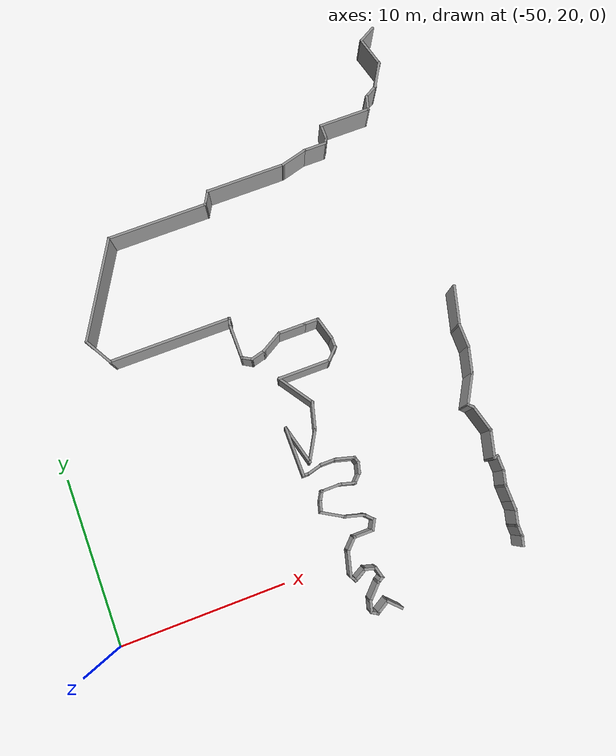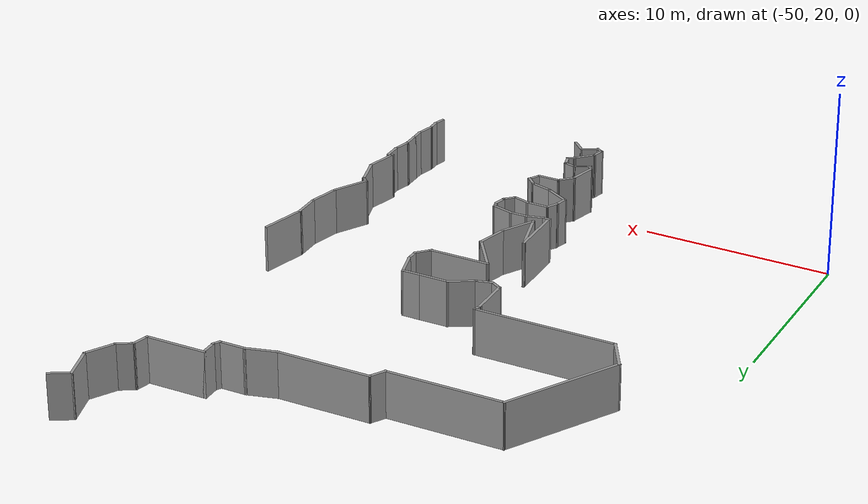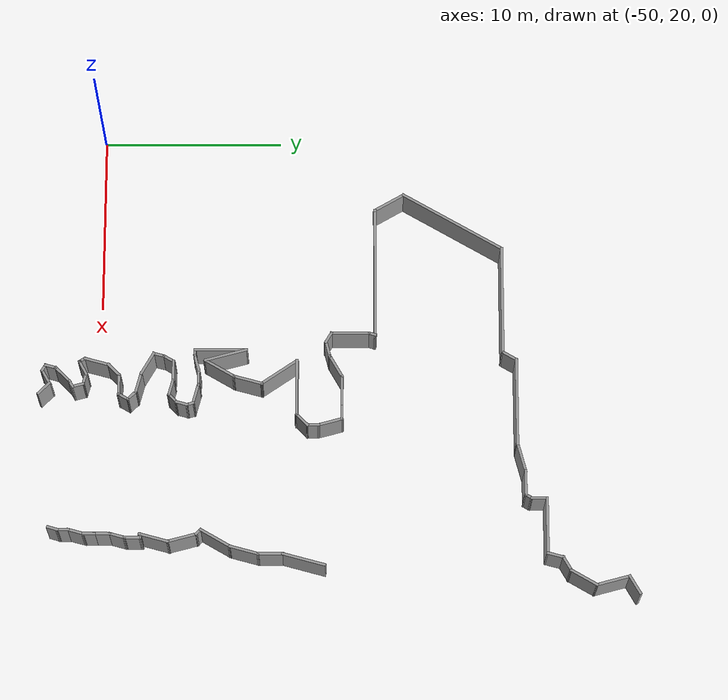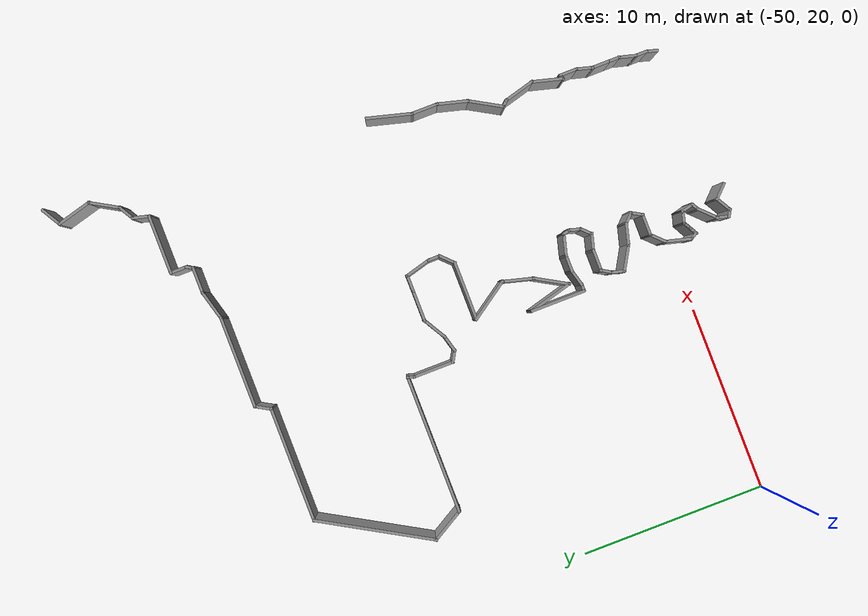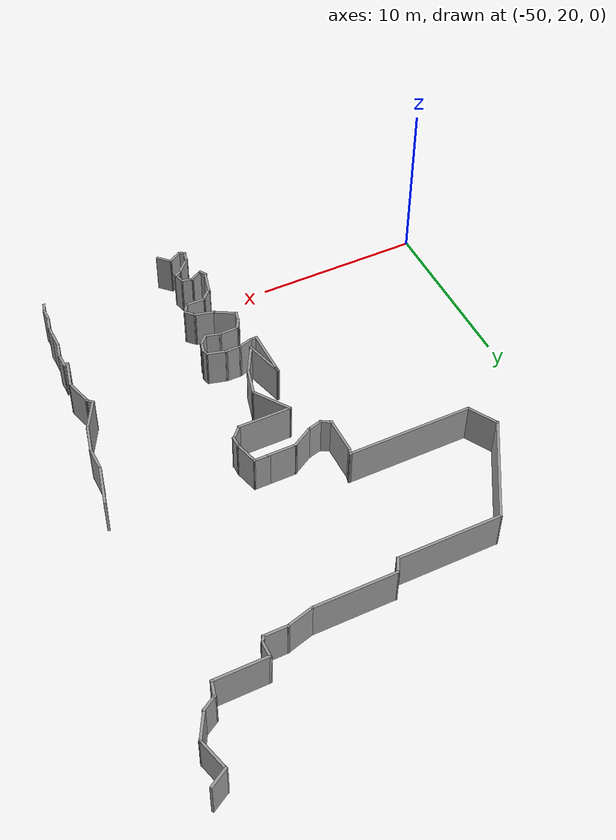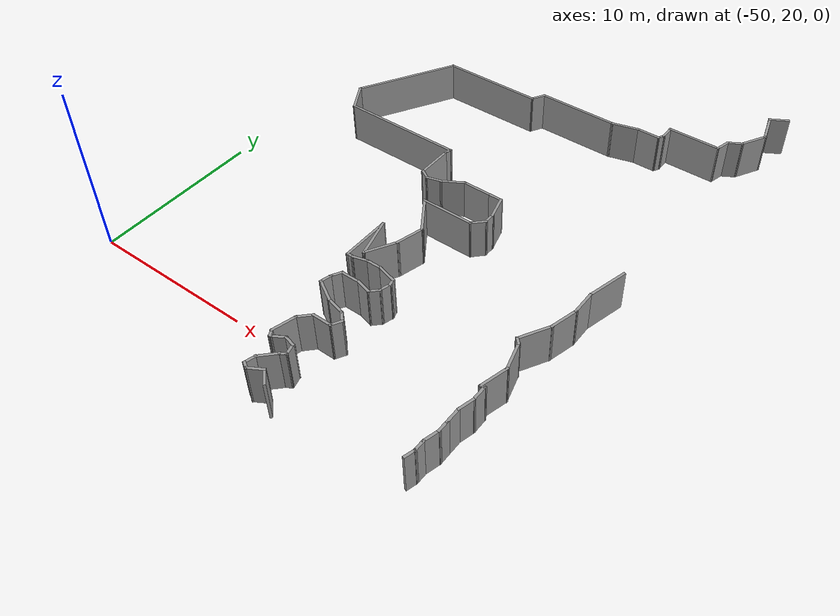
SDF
<sdf version="1.7">
 <model name="office_track1">
  <pose>2.3626 4.43866 0 0 -0 0</pose>
  <link name="Wall_14">
   <collision name="Wall_14_Collision">
    <geometry><box><size>1 0.15 2.5</size></box></geometry>
    <pose>0 0 1.25 0 -0 0</pose>
   </collision>
   <visual name="Wall_14_Visual">
    <pose>0 0 1.25 0 -0 0</pose>
    <geometry><box><size>1 0.15 2.5</size></box></geometry>
    <material>
     <script><uri>file://media/materials/scripts/gazebo.material</uri><name>Gazebo/Grey</name></script>
     <ambient>1 1 1 1</ambient>
    </material>
    <meta><layer>0</layer></meta>
   </visual>
   <pose>-28.5202 17.672 0 0 -0 -1.5708</pose>
  </link>
  <link name="Wall_15">
   <collision name="Wall_15_Collision">
    <geometry><box><size>1 0.15 2.5</size></box></geometry>
    <pose>0 0 1.25 0 -0 0</pose>
   </collision>
   <visual name="Wall_15_Visual">
    <pose>0 0 1.25 0 -0 0</pose>
    <geometry><box><size>1 0.15 2.5</size></box></geometry>
    <material>
     <script><uri>file://media/materials/scripts/gazebo.material</uri><name>Gazebo/Grey</name></script>
     <ambient>1 1 1 1</ambient>
    </material>
    <meta><layer>0</layer></meta>
   </visual>
   <pose>-28.6302 16.8365 0 0 -0 -1.8326</pose>
  </link>
  <link name="Wall_16">
   <collision name="Wall_16_Collision">
    <geometry><box><size>1 0.15 2.5</size></box></geometry>
    <pose>0 0 1.25 0 -0 0</pose>
   </collision>
   <visual name="Wall_16_Visual">
    <pose>0 0 1.25 0 -0 0</pose>
    <geometry><box><size>1 0.15 2.5</size></box></geometry>
    <material>
     <script><uri>file://media/materials/scripts/gazebo.material</uri><name>Gazebo/Grey</name></script>
     <ambient>1 1 1 1</ambient>
    </material>
    <meta><layer>0</layer></meta>
   </visual>
   <pose>-28.7402 16.0009 0 0 -0 -1.5708</pose>
  </link>
  <link name="Wall_17">
   <collision name="Wall_17_Collision">
    <geometry><box><size>0.75 0.15 2.5</size></box></geometry>
    <pose>0 0 1.25 0 -0 0</pose>
   </collision>
   <visual name="Wall_17_Visual">
    <pose>0 0 1.25 0 -0 0</pose>
    <geometry><box><size>0.75 0.15 2.5</size></box></geometry>
    <material>
     <script><uri>file://media/materials/scripts/gazebo.material</uri><name>Gazebo/Grey</name></script>
     <ambient>1 1 1 1</ambient>
    </material>
    <meta><layer>0</layer></meta>
   </visual>
   <pose>-28.7402 15.2759 0 0 -0 -1.5708</pose>
  </link>
  <link name="Wall_18">
   <collision name="Wall_18_Collision">
    <geometry><box><size>1 0.15 2.5</size></box></geometry>
    <pose>0 0 1.25 0 -0 0</pose>
   </collision>
   <visual name="Wall_18_Visual">
    <pose>0 0 1.25 0 -0 0</pose>
    <geometry><box><size>1 0.15 2.5</size></box></geometry>
    <material>
     <script><uri>file://media/materials/scripts/gazebo.material</uri><name>Gazebo/Grey</name></script>
     <ambient>1 1 1 1</ambient>
    </material>
    <meta><layer>0</layer></meta>
   </visual>
   <pose>-28.8502 14.5654 0 0 -0 -1.8326</pose>
  </link>
  <link name="Wall_19">
   <collision name="Wall_19_Collision">
    <geometry><box><size>0.75 0.15 2.5</size></box></geometry>
    <pose>0 0 1.25 0 -0 0</pose>
   </collision>
   <visual name="Wall_19_Visual">
    <pose>0 0 1.25 0 -0 0</pose>
    <geometry><box><size>0.75 0.15 2.5</size></box></geometry>
    <material>
     <script><uri>file://media/materials/scripts/gazebo.material</uri><name>Gazebo/Grey</name></script>
     <ambient>1 1 1 1</ambient>
    </material>
    <meta><layer>0</layer></meta>
   </visual>
   <pose>-28.9602 13.8549 0 0 -0 -1.5708</pose>
  </link>
  <link name="Wall_20">
   <collision name="Wall_20_Collision">
    <geometry><box><size>0.685393 0.15 2.5</size></box></geometry>
    <pose>0 0 1.25 0 -0 0</pose>
   </collision>
   <visual name="Wall_20_Visual">
    <pose>0 0 1.25 0 -0 0</pose>
    <geometry><box><size>0.685393 0.15 2.5</size></box></geometry>
    <material>
     <script><uri>file://media/materials/scripts/gazebo.material</uri><name>Gazebo/Grey</name></script>
     <ambient>1 1 1 1</ambient>
    </material>
    <meta><layer>0</layer></meta>
   </visual>
   <pose>-29.0341 13.2976 0 0 -0 -1.85027</pose>
  </link>
  <link name="Wall_292">
   <collision name="Wall_292_Collision">
    <geometry><box><size>2.5 0.15 2.5</size></box></geometry>
    <pose>0 0 1.25 0 -0 0</pose>
   </collision>
   <visual name="Wall_292_Visual">
    <pose>0 0 1.25 0 -0 0</pose>
    <geometry><box><size>2.5 0.15 2.5</size></box></geometry>
    <material>
     <script><uri>file://media/materials/scripts/gazebo.material</uri><name>Gazebo/Grey</name></script>
     <ambient>1 1 1 1</ambient>
    </material>
    <meta><layer>0</layer></meta>
   </visual>
   <pose>-27.3262 27.0249 0 0 -0 -1.8326</pose>
  </link>
  <link name="Wall_293">
   <collision name="Wall_293_Collision">
    <geometry><box><size>1.5 0.15 2.5</size></box></geometry>
    <pose>0 0 1.25 0 -0 0</pose>
   </collision>
   <visual name="Wall_293_Visual">
    <pose>0 0 1.25 0 -0 0</pose>
    <geometry><box><size>1.5 0.15 2.5</size></box></geometry>
    <material>
     <script><uri>file://media/materials/scripts/gazebo.material</uri><name>Gazebo/Grey</name></script>
     <ambient>1 1 1 1</ambient>
    </material>
    <meta><layer>0</layer></meta>
   </visual>
   <pose>-27.6303 25.2149 0 0 -0 -1.5708</pose>
  </link>
  <link name="Wall_294">
   <collision name="Wall_294_Collision">
    <geometry><box><size>1.75 0.15 2.5</size></box></geometry>
    <pose>0 0 1.25 0 -0 0</pose>
   </collision>
   <visual name="Wall_294_Visual">
    <pose>0 0 1.25 0 -0 0</pose>
    <geometry><box><size>1.75 0.15 2.5</size></box></geometry>
    <material>
     <script><uri>file://media/materials/scripts/gazebo.material</uri><name>Gazebo/Grey</name></script>
     <ambient>1 1 1 1</ambient>
    </material>
    <meta><layer>0</layer></meta>
   </visual>
   <pose>-27.8374 23.7672 0 0 -0 -1.8326</pose>
  </link>
  <link name="Wall_295">
   <collision name="Wall_295_Collision">
    <geometry><box><size>2 0.15 2.5</size></box></geometry>
    <pose>0 0 1.25 0 -0 0</pose>
   </collision>
   <visual name="Wall_295_Visual">
    <pose>0 0 1.25 0 -0 0</pose>
    <geometry><box><size>2 0.15 2.5</size></box></geometry>
    <material>
     <script><uri>file://media/materials/scripts/gazebo.material</uri><name>Gazebo/Grey</name></script>
     <ambient>1 1 1 1</ambient>
    </material>
    <meta><layer>0</layer></meta>
   </visual>
   <pose>-28.5069 22.1934 0 0 -0 -2.0944</pose>
  </link>
  <link name="Wall_296">
   <collision name="Wall_296_Collision">
    <geometry><box><size>0.5 0.15 2.5</size></box></geometry>
    <pose>0 0 1.25 0 -0 0</pose>
   </collision>
   <visual name="Wall_296_Visual">
    <pose>0 0 1.25 0 -0 0</pose>
    <geometry><box><size>0.5 0.15 2.5</size></box></geometry>
    <material>
     <script><uri>file://media/materials/scripts/gazebo.material</uri><name>Gazebo/Grey</name></script>
     <ambient>1 1 1 1</ambient>
    </material>
    <meta><layer>0</layer></meta>
   </visual>
   <pose>-28.8457 21.2685 0 0 -0 -0.785398</pose>
  </link>
  <link name="Wall_297">
   <collision name="Wall_297_Collision">
    <geometry><box><size>1.75 0.15 2.5</size></box></geometry>
    <pose>0 0 1.25 0 -0 0</pose>
   </collision>
   <visual name="Wall_297_Visual">
    <pose>0 0 1.25 0 -0 0</pose>
    <geometry><box><size>1.75 0.15 2.5</size></box></geometry>
    <material>
     <script><uri>file://media/materials/scripts/gazebo.material</uri><name>Gazebo/Grey</name></script>
     <ambient>1 1 1 1</ambient>
    </material>
    <meta><layer>0</layer></meta>
   </visual>
   <pose>-28.5149 20.3721 0 0 -0 -1.309</pose>
  </link>
  <link name="Wall_298">
   <collision name="Wall_298_Collision">
    <geometry><box><size>1.75 0.15 2.5</size></box></geometry>
    <pose>0 0 1.25 0 -0 0</pose>
   </collision>
   <visual name="Wall_298_Visual">
    <pose>0 0 1.25 0 -0 0</pose>
    <geometry><box><size>1.75 0.15 2.5</size></box></geometry>
    <material>
     <script><uri>file://media/materials/scripts/gazebo.material</uri><name>Gazebo/Grey</name></script>
     <ambient>1 1 1 1</ambient>
    </material>
    <meta><layer>0</layer></meta>
   </visual>
   <pose>-28.5149 18.8266 0 0 -0 -1.8326</pose>
  </link>
  <link name="Wall_299">
   <collision name="Wall_299_Collision">
    <geometry><box><size>0.356248 0.15 2.5</size></box></geometry>
    <pose>0 0 1.25 0 -0 0</pose>
   </collision>
   <visual name="Wall_299_Visual">
    <pose>0 0 1.25 0 -0 0</pose>
    <geometry><box><size>0.356248 0.15 2.5</size></box></geometry>
    <material>
     <script><uri>file://media/materials/scripts/gazebo.material</uri><name>Gazebo/Grey</name></script>
     <ambient>1 1 1 1</ambient>
    </material>
    <meta><layer>0</layer></meta>
   </visual>
   <pose>-28.6211 18.0754 0 0 -0 0.210782</pose>
  </link>
  <link name="Wall_539">
   <collision name="Wall_539_Collision">
    <geometry><box><size>1 0.15 2.5</size></box></geometry>
    <pose>0 0 1.25 0 -0 0</pose>
   </collision>
   <visual name="Wall_539_Visual">
    <pose>0 0 1.25 0 -0 0</pose>
    <geometry><box><size>1 0.15 2.5</size></box></geometry>
    <material>
     <script><uri>file://media/materials/scripts/gazebo.material</uri><name>Gazebo/Grey</name></script>
     <ambient>1 1 1 1</ambient>
    </material>
    <meta><layer>0</layer></meta>
   </visual>
   <pose>-37.0046 12.5911 0 0 -0 2.35619</pose>
  </link>
  <link name="Wall_540">
   <collision name="Wall_540_Collision">
    <geometry><box><size>1 0.15 2.5</size></box></geometry>
    <pose>0 0 1.25 0 -0 0</pose>
   </collision>
   <visual name="Wall_540_Visual">
    <pose>0 0 1.25 0 -0 0</pose>
    <geometry><box><size>1 0.15 2.5</size></box></geometry>
    <material>
     <script><uri>file://media/materials/scripts/gazebo.material</uri><name>Gazebo/Grey</name></script>
     <ambient>1 1 1 1</ambient>
    </material>
    <meta><layer>0</layer></meta>
   </visual>
   <pose>-37.6732 12.6791 0 0 -0 -2.61799</pose>
  </link>
  <link name="Wall_541">
   <collision name="Wall_541_Collision">
    <geometry><box><size>0.5 0.15 2.5</size></box></geometry>
    <pose>0 0 1.25 0 -0 0</pose>
   </collision>
   <visual name="Wall_541_Visual">
    <pose>0 0 1.25 0 -0 0</pose>
    <geometry><box><size>0.5 0.15 2.5</size></box></geometry>
    <material>
     <script><uri>file://media/materials/scripts/gazebo.material</uri><name>Gazebo/Grey</name></script>
     <ambient>1 1 1 1</ambient>
    </material>
    <meta><layer>0</layer></meta>
   </visual>
   <pose>-38.1928 12.5541 0 0 -0 2.61799</pose>
  </link>
  <link name="Wall_542">
   <collision name="Wall_542_Collision">
    <geometry><box><size>0.75 0.15 2.5</size></box></geometry>
    <pose>0 0 1.25 0 -0 0</pose>
   </collision>
   <visual name="Wall_542_Visual">
    <pose>0 0 1.25 0 -0 0</pose>
    <geometry><box><size>0.75 0.15 2.5</size></box></geometry>
    <material>
     <script><uri>file://media/materials/scripts/gazebo.material</uri><name>Gazebo/Grey</name></script>
     <ambient>1 1 1 1</ambient>
    </material>
    <meta><layer>0</layer></meta>
   </visual>
   <pose>-38.2668 12.9314 0 0 -0 1.309</pose>
  </link>
  <link name="Wall_543">
   <collision name="Wall_543_Collision">
    <geometry><box><size>1.25 0.15 2.5</size></box></geometry>
    <pose>0 0 1.25 0 -0 0</pose>
   </collision>
   <visual name="Wall_543_Visual">
    <pose>0 0 1.25 0 -0 0</pose>
    <geometry><box><size>1.25 0.15 2.5</size></box></geometry>
    <material>
     <script><uri>file://media/materials/scripts/gazebo.material</uri><name>Gazebo/Grey</name></script>
     <ambient>1 1 1 1</ambient>
    </material>
    <meta><layer>0</layer></meta>
   </visual>
   <pose>-37.8002 13.6101 0 0 -0 0.785398</pose>
  </link>
  <link name="Wall_544">
   <collision name="Wall_544_Collision">
    <geometry><box><size>0.5 0.15 2.5</size></box></geometry>
    <pose>0 0 1.25 0 -0 0</pose>
   </collision>
   <visual name="Wall_544_Visual">
    <pose>0 0 1.25 0 -0 0</pose>
    <geometry><box><size>0.5 0.15 2.5</size></box></geometry>
    <material>
     <script><uri>file://media/materials/scripts/gazebo.material</uri><name>Gazebo/Grey</name></script>
     <ambient>1 1 1 1</ambient>
    </material>
    <meta><layer>0</layer></meta>
   </visual>
   <pose>-37.2597 14.0865 0 0 -0 0.523599</pose>
  </link>
  <link name="Wall_545">
   <collision name="Wall_545_Collision">
    <geometry><box><size>0.75 0.15 2.5</size></box></geometry>
    <pose>0 0 1.25 0 -0 0</pose>
   </collision>
   <visual name="Wall_545_Visual">
    <pose>0 0 1.25 0 -0 0</pose>
    <geometry><box><size>0.75 0.15 2.5</size></box></geometry>
    <material>
     <script><uri>file://media/materials/scripts/gazebo.material</uri><name>Gazebo/Grey</name></script>
     <ambient>1 1 1 1</ambient>
    </material>
    <meta><layer>0</layer></meta>
   </visual>
   <pose>-37.1858 14.4638 0 0 -0 1.8326</pose>
  </link>
  <link name="Wall_546">
   <collision name="Wall_546_Collision">
    <geometry><box><size>0.75 0.15 2.5</size></box></geometry>
    <pose>0 0 1.25 0 -0 0</pose>
   </collision>
   <visual name="Wall_546_Visual">
    <pose>0 0 1.25 0 -0 0</pose>
    <geometry><box><size>0.75 0.15 2.5</size></box></geometry>
    <material>
     <script><uri>file://media/materials/scripts/gazebo.material</uri><name>Gazebo/Grey</name></script>
     <ambient>1 1 1 1</ambient>
    </material>
    <meta><layer>0</layer></meta>
   </visual>
   <pose>-37.5533 14.8312 0 0 -0 2.87979</pose>
  </link>
  <link name="Wall_547">
   <collision name="Wall_547_Collision">
    <geometry><box><size>0.75 0.15 2.5</size></box></geometry>
    <pose>0 0 1.25 0 -0 0</pose>
   </collision>
   <visual name="Wall_547_Visual">
    <pose>0 0 1.25 0 -0 0</pose>
    <geometry><box><size>0.75 0.15 2.5</size></box></geometry>
    <material>
     <script><uri>file://media/materials/scripts/gazebo.material</uri><name>Gazebo/Grey</name></script>
     <ambient>1 1 1 1</ambient>
    </material>
    <meta><layer>0</layer></meta>
   </visual>
   <pose>-38.1028 14.7589 0 0 -0 -2.61799</pose>
  </link>
  <link name="Wall_549">
   <collision name="Wall_549_Collision">
    <geometry><box><size>1.25 0.15 2.5</size></box></geometry>
    <pose>0 0 1.25 0 -0 0</pose>
   </collision>
   <visual name="Wall_549_Visual">
    <pose>0 0 1.25 0 -0 0</pose>
    <geometry><box><size>1.25 0.15 2.5</size></box></geometry>
    <material>
     <script><uri>file://media/materials/scripts/gazebo.material</uri><name>Gazebo/Grey</name></script>
     <ambient>1 1 1 1</ambient>
    </material>
    <meta><layer>0</layer></meta>
   </visual>
   <pose>-37.3368 17.8209 0 0 -0 -0.261799</pose>
  </link>
  <link name="Wall_550">
   <collision name="Wall_550_Collision">
    <geometry><box><size>0.75 0.15 2.5</size></box></geometry>
    <pose>0 0 1.25 0 -0 0</pose>
   </collision>
   <visual name="Wall_550_Visual">
    <pose>0 0 1.25 0 -0 0</pose>
    <geometry><box><size>0.75 0.15 2.5</size></box></geometry>
    <material>
     <script><uri>file://media/materials/scripts/gazebo.material</uri><name>Gazebo/Grey</name></script>
     <ambient>1 1 1 1</ambient>
    </material>
    <meta><layer>0</layer></meta>
   </visual>
   <pose>-36.5934 17.4664 0 0 -0 -0.785398</pose>
  </link>
  <link name="Wall_551">
   <collision name="Wall_551_Collision">
    <geometry><box><size>0.75 0.15 2.5</size></box></geometry>
    <pose>0 0 1.25 0 -0 0</pose>
   </collision>
   <visual name="Wall_551_Visual">
    <pose>0 0 1.25 0 -0 0</pose>
    <geometry><box><size>0.75 0.15 2.5</size></box></geometry>
    <material>
     <script><uri>file://media/materials/scripts/gazebo.material</uri><name>Gazebo/Grey</name></script>
     <ambient>1 1 1 1</ambient>
    </material>
    <meta><layer>0</layer></meta>
   </visual>
   <pose>-36.5312 16.9945 0 0 -0 -2.0944</pose>
  </link>
  <link name="Wall_552">
   <collision name="Wall_552_Collision">
    <geometry><box><size>1.25 0.15 2.5</size></box></geometry>
    <pose>0 0 1.25 0 -0 0</pose>
   </collision>
   <visual name="Wall_552_Visual">
    <pose>0 0 1.25 0 -0 0</pose>
    <geometry><box><size>1.25 0.15 2.5</size></box></geometry>
    <material>
     <script><uri>file://media/materials/scripts/gazebo.material</uri><name>Gazebo/Grey</name></script>
     <ambient>1 1 1 1</ambient>
    </material>
    <meta><layer>0</layer></meta>
   </visual>
   <pose>-37.2312 16.7347 0 0 -0 3.14159</pose>
  </link>
  <link name="Wall_553">
   <collision name="Wall_553_Collision">
    <geometry><box><size>1 0.15 2.5</size></box></geometry>
    <pose>0 0 1.25 0 -0 0</pose>
   </collision>
   <visual name="Wall_553_Visual">
    <pose>0 0 1.25 0 -0 0</pose>
    <geometry><box><size>1 0.15 2.5</size></box></geometry>
    <material>
     <script><uri>file://media/materials/scripts/gazebo.material</uri><name>Gazebo/Grey</name></script>
     <ambient>1 1 1 1</ambient>
    </material>
    <meta><layer>0</layer></meta>
   </visual>
   <pose>-38.0818 16.4341 0 0 -0 -2.35619</pose>
  </link>
  <link name="Wall_554">
   <collision name="Wall_554_Collision">
    <geometry><box><size>1.5 0.15 2.5</size></box></geometry>
    <pose>0 0 1.25 0 -0 0</pose>
   </collision>
   <visual name="Wall_554_Visual">
    <pose>0 0 1.25 0 -0 0</pose>
    <geometry><box><size>1.5 0.15 2.5</size></box></geometry>
    <material>
     <script><uri>file://media/materials/scripts/gazebo.material</uri><name>Gazebo/Grey</name></script>
     <ambient>1 1 1 1</ambient>
    </material>
    <meta><layer>0</layer></meta>
   </visual>
   <pose>-38.557 15.4816 0 0 -0 -1.8326</pose>
  </link>
  <link name="Wall_555">
   <collision name="Wall_555_Collision">
    <geometry><box><size>0.5 0.15 2.5</size></box></geometry>
    <pose>0 0 1.25 0 -0 0</pose>
   </collision>
   <visual name="Wall_555_Visual">
    <pose>0 0 1.25 0 -0 0</pose>
    <geometry><box><size>0.5 0.15 2.5</size></box></geometry>
    <material>
     <script><uri>file://media/materials/scripts/gazebo.material</uri><name>Gazebo/Grey</name></script>
     <ambient>1 1 1 1</ambient>
    </material>
    <meta><layer>0</layer></meta>
   </visual>
   <pose>-38.6442 14.6781 0 0 -0 -1.0472</pose>
  </link>
  <link name="Wall_556">
   <collision name="Wall_556_Collision">
    <geometry><box><size>0.15 0.15 2.5</size></box></geometry>
    <pose>0 0 1.25 0 -0 0</pose>
   </collision>
   <visual name="Wall_556_Visual">
    <pose>0 0 1.25 0 -0 0</pose>
    <geometry><box><size>0.15 0.15 2.5</size></box></geometry>
    <material>
     <script><uri>file://media/materials/scripts/gazebo.material</uri><name>Gazebo/Grey</name></script>
     <ambient>1 1 1 1</ambient>
    </material>
    <meta><layer>0</layer></meta>
   </visual>
   <pose>-38.5567 14.5265 0 0 -0 0</pose>
  </link>
  <link name="Wall_557">
   <collision name="Wall_557_Collision">
    <geometry><box><size>0.959625 0.15 2.5</size></box></geometry>
    <pose>0 0 1.25 0 -0 0</pose>
   </collision>
   <visual name="Wall_557_Visual">
    <pose>0 0 1.25 0 -0 0</pose>
    <geometry><box><size>0.959625 0.15 2.5</size></box></geometry>
    <material>
     <script><uri>file://media/materials/scripts/gazebo.material</uri><name>Gazebo/Grey</name></script>
     <ambient>1 1 1 1</ambient>
    </material>
    <meta><layer>0</layer></meta>
   </visual>
   <pose>-38.1999 14.7177 0 0 -0 0.491857</pose>
  </link>
  <link name="Wall_559">
   <collision name="Wall_559_Collision">
    <geometry><box><size>1.5 0.15 2.5</size></box></geometry>
    <pose>0 0 1.25 0 -0 0</pose>
   </collision>
   <visual name="Wall_559_Visual">
    <pose>0 0 1.25 0 -0 0</pose>
    <geometry><box><size>1.5 0.15 2.5</size></box></geometry>
    <material>
     <script><uri>file://media/materials/scripts/gazebo.material</uri><name>Gazebo/Grey</name></script>
     <ambient>1 1 1 1</ambient>
    </material>
    <meta><layer>0</layer></meta>
   </visual>
   <pose>-38.4526 18.3007 0 0 -0 2.61799</pose>
  </link>
  <link name="Wall_560">
   <collision name="Wall_560_Collision">
    <geometry><box><size>0.75 0.15 2.5</size></box></geometry>
    <pose>0 0 1.25 0 -0 0</pose>
   </collision>
   <visual name="Wall_560_Visual">
    <pose>0 0 1.25 0 -0 0</pose>
    <geometry><box><size>0.75 0.15 2.5</size></box></geometry>
    <material>
     <script><uri>file://media/materials/scripts/gazebo.material</uri><name>Gazebo/Grey</name></script>
     <ambient>1 1 1 1</ambient>
    </material>
    <meta><layer>0</layer></meta>
   </visual>
   <pose>-38.9595 18.928 0 0 -0 1.309</pose>
  </link>
  <link name="Wall_561">
   <collision name="Wall_561_Collision">
    <geometry><box><size>0.75 0.15 2.5</size></box></geometry>
    <pose>0 0 1.25 0 -0 0</pose>
   </collision>
   <visual name="Wall_561_Visual">
    <pose>0 0 1.25 0 -0 0</pose>
    <geometry><box><size>0.75 0.15 2.5</size></box></geometry>
    <material>
     <script><uri>file://media/materials/scripts/gazebo.material</uri><name>Gazebo/Grey</name></script>
     <ambient>1 1 1 1</ambient>
    </material>
    <meta><layer>0</layer></meta>
   </visual>
   <pose>-38.7319 19.4776 0 0 -0 1.0472</pose>
  </link>
  <link name="Wall_562">
   <collision name="Wall_562_Collision">
    <geometry><box><size>1.25 0.15 2.5</size></box></geometry>
    <pose>0 0 1.25 0 -0 0</pose>
   </collision>
   <visual name="Wall_562_Visual">
    <pose>0 0 1.25 0 -0 0</pose>
    <geometry><box><size>1.25 0.15 2.5</size></box></geometry>
    <material>
     <script><uri>file://media/materials/scripts/gazebo.material</uri><name>Gazebo/Grey</name></script>
     <ambient>1 1 1 1</ambient>
    </material>
    <meta><layer>0</layer></meta>
   </visual>
   <pose>-38.0319 19.7374 0 0 -0 0</pose>
  </link>
  <link name="Wall_563">
   <collision name="Wall_563_Collision">
    <geometry><box><size>1 0.15 2.5</size></box></geometry>
    <pose>0 0 1.25 0 -0 0</pose>
   </collision>
   <visual name="Wall_563_Visual">
    <pose>0 0 1.25 0 -0 0</pose>
    <geometry><box><size>1 0.15 2.5</size></box></geometry>
    <material>
     <script><uri>file://media/materials/scripts/gazebo.material</uri><name>Gazebo/Grey</name></script>
     <ambient>1 1 1 1</ambient>
    </material>
    <meta><layer>0</layer></meta>
   </visual>
   <pose>-37.0713 19.6274 0 0 -0 -0.261799</pose>
  </link>
  <link name="Wall_564">
   <collision name="Wall_564_Collision">
    <geometry><box><size>0.75 0.15 2.5</size></box></geometry>
    <pose>0 0 1.25 0 -0 0</pose>
   </collision>
   <visual name="Wall_564_Visual">
    <pose>0 0 1.25 0 -0 0</pose>
    <geometry><box><size>0.75 0.15 2.5</size></box></geometry>
    <material>
     <script><uri>file://media/materials/scripts/gazebo.material</uri><name>Gazebo/Grey</name></script>
     <ambient>1 1 1 1</ambient>
    </material>
    <meta><layer>0</layer></meta>
   </visual>
   <pose>-36.4487 19.7295 0 0 -0 0.785398</pose>
  </link>
  <link name="Wall_565">
   <collision name="Wall_565_Collision">
    <geometry><box><size>0.75 0.15 2.5</size></box></geometry>
    <pose>0 0 1.25 0 -0 0</pose>
   </collision>
   <visual name="Wall_565_Visual">
    <pose>0 0 1.25 0 -0 0</pose>
    <geometry><box><size>0.75 0.15 2.5</size></box></geometry>
    <material>
     <script><uri>file://media/materials/scripts/gazebo.material</uri><name>Gazebo/Grey</name></script>
     <ambient>1 1 1 1</ambient>
    </material>
    <meta><layer>0</layer></meta>
   </visual>
   <pose>-36.1589 20.2315 0 0 -0 1.309</pose>
  </link>
  <link name="Wall_566">
   <collision name="Wall_566_Collision">
    <geometry><box><size>0.5 0.15 2.5</size></box></geometry>
    <pose>0 0 1.25 0 -0 0</pose>
   </collision>
   <visual name="Wall_566_Visual">
    <pose>0 0 1.25 0 -0 0</pose>
    <geometry><box><size>0.5 0.15 2.5</size></box></geometry>
    <material>
     <script><uri>file://media/materials/scripts/gazebo.material</uri><name>Gazebo/Grey</name></script>
     <ambient>1 1 1 1</ambient>
    </material>
    <meta><layer>0</layer></meta>
   </visual>
   <pose>-36.1266 20.6903 0 0 -0 1.8326</pose>
  </link>
  <link name="Wall_567">
   <collision name="Wall_567_Collision">
    <geometry><box><size>1.25 0.15 2.5</size></box></geometry>
    <pose>0 0 1.25 0 -0 0</pose>
   </collision>
   <visual name="Wall_567_Visual">
    <pose>0 0 1.25 0 -0 0</pose>
    <geometry><box><size>1.25 0.15 2.5</size></box></geometry>
    <material>
     <script><uri>file://media/materials/scripts/gazebo.material</uri><name>Gazebo/Grey</name></script>
     <ambient>1 1 1 1</ambient>
    </material>
    <meta><layer>0</layer></meta>
   </visual>
   <pose>-36.7031 21.0017 0 0 -0 2.87979</pose>
  </link>
  <link name="Wall_568">
   <collision name="Wall_568_Collision">
    <geometry><box><size>1 0.15 2.5</size></box></geometry>
    <pose>0 0 1.25 0 -0 0</pose>
   </collision>
   <visual name="Wall_568_Visual">
    <pose>0 0 1.25 0 -0 0</pose>
    <geometry><box><size>1 0.15 2.5</size></box></geometry>
    <material>
     <script><uri>file://media/materials/scripts/gazebo.material</uri><name>Gazebo/Grey</name></script>
     <ambient>1 1 1 1</ambient>
    </material>
    <meta><layer>0</layer></meta>
   </visual>
   <pose>-37.6594 21.144 0 0 -0 3.14159</pose>
  </link>
  <link name="Wall_569">
   <collision name="Wall_569_Collision">
    <geometry><box><size>1 0.15 2.5</size></box></geometry>
    <pose>0 0 1.25 0 -0 0</pose>
   </collision>
   <visual name="Wall_569_Visual">
    <pose>0 0 1.25 0 -0 0</pose>
    <geometry><box><size>1 0.15 2.5</size></box></geometry>
    <material>
     <script><uri>file://media/materials/scripts/gazebo.material</uri><name>Gazebo/Grey</name></script>
     <ambient>1 1 1 1</ambient>
    </material>
    <meta><layer>0</layer></meta>
   </visual>
   <pose>-38.4949 21.034 0 0 -0 -2.87979</pose>
  </link>
  <link name="Wall_570">
   <collision name="Wall_570_Collision">
    <geometry><box><size>0.5 0.15 2.5</size></box></geometry>
    <pose>0 0 1.25 0 -0 0</pose>
   </collision>
   <visual name="Wall_570_Visual">
    <pose>0 0 1.25 0 -0 0</pose>
    <geometry><box><size>0.5 0.15 2.5</size></box></geometry>
    <material>
     <script><uri>file://media/materials/scripts/gazebo.material</uri><name>Gazebo/Grey</name></script>
     <ambient>1 1 1 1</ambient>
    </material>
    <meta><layer>0</layer></meta>
   </visual>
   <pose>-39.0804 20.924 0 0 -0 3.14159</pose>
  </link>
  <link name="Wall_571">
   <collision name="Wall_571_Collision">
    <geometry><box><size>3 0.15 2.5</size></box></geometry>
    <pose>0 0 1.25 0 -0 0</pose>
   </collision>
   <visual name="Wall_571_Visual">
    <pose>0 0 1.25 0 -0 0</pose>
    <geometry><box><size>3 0.15 2.5</size></box></geometry>
    <material>
     <script><uri>file://media/materials/scripts/gazebo.material</uri><name>Gazebo/Grey</name></script>
     <ambient>1 1 1 1</ambient>
    </material>
    <meta><layer>0</layer></meta>
   </visual>
   <pose>-39.2554 22.349 0 0 -0 1.5708</pose>
  </link>
  <link name="Wall_572">
   <collision name="Wall_572_Collision">
    <geometry><box><size>2.5 0.15 2.5</size></box></geometry>
    <pose>0 0 1.25 0 -0 0</pose>
   </collision>
   <visual name="Wall_572_Visual">
    <pose>0 0 1.25 0 -0 0</pose>
    <geometry><box><size>2.5 0.15 2.5</size></box></geometry>
    <material>
     <script><uri>file://media/materials/scripts/gazebo.material</uri><name>Gazebo/Grey</name></script>
     <ambient>1 1 1 1</ambient>
    </material>
    <meta><layer>0</layer></meta>
   </visual>
   <pose>-38.9513 22.6391 0 0 -0 -1.309</pose>
  </link>
  <link name="Wall_573">
   <collision name="Wall_573_Collision">
    <geometry><box><size>2 0.15 2.5</size></box></geometry>
    <pose>0 0 1.25 0 -0 0</pose>
   </collision>
   <visual name="Wall_573_Visual">
    <pose>0 0 1.25 0 -0 0</pose>
    <geometry><box><size>2 0.15 2.5</size></box></geometry>
    <material>
     <script><uri>file://media/materials/scripts/gazebo.material</uri><name>Gazebo/Grey</name></script>
     <ambient>1 1 1 1</ambient>
    </material>
    <meta><layer>0</layer></meta>
   </visual>
   <pose>-38.1847 22.3052 0 0 -0 1.0472</pose>
  </link>
  <link name="Wall_574">
   <collision name="Wall_574_Collision">
    <geometry><box><size>1.75 0.15 2.5</size></box></geometry>
    <pose>0 0 1.25 0 -0 0</pose>
   </collision>
   <visual name="Wall_574_Visual">
    <pose>0 0 1.25 0 -0 0</pose>
    <geometry><box><size>1.75 0.15 2.5</size></box></geometry>
    <material>
     <script><uri>file://media/materials/scripts/gazebo.material</uri><name>Gazebo/Grey</name></script>
     <ambient>1 1 1 1</ambient>
    </material>
    <meta><layer>0</layer></meta>
   </visual>
   <pose>-37.5151 23.879 0 0 -0 1.309</pose>
  </link>
  <link name="Wall_575">
   <collision name="Wall_575_Collision">
    <geometry><box><size>0.15 0.15 2.5</size></box></geometry>
    <pose>0 0 1.25 0 -0 0</pose>
   </collision>
   <visual name="Wall_575_Visual">
    <pose>0 0 1.25 0 -0 0</pose>
    <geometry><box><size>0.15 0.15 2.5</size></box></geometry>
    <material>
     <script><uri>file://media/materials/scripts/gazebo.material</uri><name>Gazebo/Grey</name></script>
     <ambient>1 1 1 1</ambient>
    </material>
    <meta><layer>0</layer></meta>
   </visual>
   <pose>-37.3081 24.6517 0 0 -0 0</pose>
  </link>
  <link name="Wall_577">
   <collision name="Wall_577_Collision">
    <geometry><box><size>2.49769 0.15 2.5</size></box></geometry>
    <pose>0 0 1.25 0 -0 0</pose>
   </collision>
   <visual name="Wall_577_Visual">
    <pose>0 0 1.25 0 -0 0</pose>
    <geometry><box><size>2.49769 0.15 2.5</size></box></geometry>
    <material>
     <script><uri>file://media/materials/scripts/gazebo.material</uri><name>Gazebo/Grey</name></script>
     <ambient>1 1 1 1</ambient>
    </material>
    <meta><layer>0</layer></meta>
   </visual>
   <pose>-37.9697 25.6213 0 0 -0 -0.97201</pose>
  </link>
  <link name="Wall_579">
   <collision name="Wall_579_Collision">
    <geometry><box><size>3.25 0.15 2.5</size></box></geometry>
    <pose>0 0 1.25 0 -0 0</pose>
   </collision>
   <visual name="Wall_579_Visual">
    <pose>0 0 1.25 0 -0 0</pose>
    <geometry><box><size>3.25 0.15 2.5</size></box></geometry>
    <material>
     <script><uri>file://media/materials/scripts/gazebo.material</uri><name>Gazebo/Grey</name></script>
     <ambient>1 1 1 1</ambient>
    </material>
    <meta><layer>0</layer></meta>
   </visual>
   <pose>-37.0813 26.591 0 0 -0 0</pose>
  </link>
  <link name="Wall_580">
   <collision name="Wall_580_Collision">
    <geometry><box><size>1 0.15 2.5</size></box></geometry>
    <pose>0 0 1.25 0 -0 0</pose>
   </collision>
   <visual name="Wall_580_Visual">
    <pose>0 0 1.25 0 -0 0</pose>
    <geometry><box><size>1 0.15 2.5</size></box></geometry>
    <material>
     <script><uri>file://media/materials/scripts/gazebo.material</uri><name>Gazebo/Grey</name></script>
     <ambient>1 1 1 1</ambient>
    </material>
    <meta><layer>0</layer></meta>
   </visual>
   <pose>-35.2308 26.8915 0 0 -0 0.785398</pose>
  </link>
  <link name="Wall_581">
   <collision name="Wall_581_Collision">
    <geometry><box><size>0.75 0.15 2.5</size></box></geometry>
    <pose>0 0 1.25 0 -0 0</pose>
   </collision>
   <visual name="Wall_581_Visual">
    <pose>0 0 1.25 0 -0 0</pose>
    <geometry><box><size>0.75 0.15 2.5</size></box></geometry>
    <material>
     <script><uri>file://media/materials/scripts/gazebo.material</uri><name>Gazebo/Grey</name></script>
     <ambient>1 1 1 1</ambient>
    </material>
    <meta><layer>0</layer></meta>
   </visual>
   <pose>-34.9303 27.492 0 0 -0 1.5708</pose>
  </link>
  <link name="Wall_582">
   <collision name="Wall_582_Collision">
    <geometry><box><size>1.5 0.15 2.5</size></box></geometry>
    <pose>0 0 1.25 0 -0 0</pose>
   </collision>
   <visual name="Wall_582_Visual">
    <pose>0 0 1.25 0 -0 0</pose>
    <geometry><box><size>1.5 0.15 2.5</size></box></geometry>
    <material>
     <script><uri>file://media/materials/scripts/gazebo.material</uri><name>Gazebo/Grey</name></script>
     <ambient>1 1 1 1</ambient>
    </material>
    <meta><layer>0</layer></meta>
   </visual>
   <pose>-35.105 28.444 0 0 -0 1.8326</pose>
  </link>
  <link name="Wall_583">
   <collision name="Wall_583_Collision">
    <geometry><box><size>1 0.15 2.5</size></box></geometry>
    <pose>0 0 1.25 0 -0 0</pose>
   </collision>
   <visual name="Wall_583_Visual">
    <pose>0 0 1.25 0 -0 0</pose>
    <geometry><box><size>1 0.15 2.5</size></box></geometry>
    <material>
     <script><uri>file://media/materials/scripts/gazebo.material</uri><name>Gazebo/Grey</name></script>
     <ambient>1 1 1 1</ambient>
    </material>
    <meta><layer>0</layer></meta>
   </visual>
   <pose>-35.7047 29.096 0 0 -0 3.14159</pose>
  </link>
  <link name="Wall_584">
   <collision name="Wall_584_Collision">
    <geometry><box><size>1.75 0.15 2.5</size></box></geometry>
    <pose>0 0 1.25 0 -0 0</pose>
   </collision>
   <visual name="Wall_584_Visual">
    <pose>0 0 1.25 0 -0 0</pose>
    <geometry><box><size>1.75 0.15 2.5</size></box></geometry>
    <material>
     <script><uri>file://media/materials/scripts/gazebo.material</uri><name>Gazebo/Grey</name></script>
     <ambient>1 1 1 1</ambient>
    </material>
    <meta><layer>0</layer></meta>
   </visual>
   <pose>-36.9297 29.096 0 0 -0 3.14159</pose>
  </link>
  <link name="Wall_585">
   <collision name="Wall_585_Collision">
    <geometry><box><size>1.5 0.15 2.5</size></box></geometry>
    <pose>0 0 1.25 0 -0 0</pose>
   </collision>
   <visual name="Wall_585_Visual">
    <pose>0 0 1.25 0 -0 0</pose>
    <geometry><box><size>1.5 0.15 2.5</size></box></geometry>
    <material>
     <script><uri>file://media/materials/scripts/gazebo.material</uri><name>Gazebo/Grey</name></script>
     <ambient>1 1 1 1</ambient>
    </material>
    <meta><layer>0</layer></meta>
   </visual>
   <pose>-38.3143 28.7585 0 0 -0 -2.61799</pose>
  </link>
  <link name="Wall_586">
   <collision name="Wall_586_Collision">
    <geometry><box><size>1 0.15 2.5</size></box></geometry>
    <pose>0 0 1.25 0 -0 0</pose>
   </collision>
   <visual name="Wall_586_Visual">
    <pose>0 0 1.25 0 -0 0</pose>
    <geometry><box><size>1 0.15 2.5</size></box></geometry>
    <material>
     <script><uri>file://media/materials/scripts/gazebo.material</uri><name>Gazebo/Grey</name></script>
     <ambient>1 1 1 1</ambient>
    </material>
    <meta><layer>0</layer></meta>
   </visual>
   <pose>-39.3093 28.311 0 0 -0 -2.87979</pose>
  </link>
  <link name="Wall_587">
   <collision name="Wall_587_Collision">
    <geometry><box><size>0.75 0.15 2.5</size></box></geometry>
    <pose>0 0 1.25 0 -0 0</pose>
   </collision>
   <visual name="Wall_587_Visual">
    <pose>0 0 1.25 0 -0 0</pose>
    <geometry><box><size>0.75 0.15 2.5</size></box></geometry>
    <material>
     <script><uri>file://media/materials/scripts/gazebo.material</uri><name>Gazebo/Grey</name></script>
     <ambient>1 1 1 1</ambient>
    </material>
    <meta><layer>0</layer></meta>
   </visual>
   <pose>-39.9797 28.351 0 0 -0 2.61799</pose>
  </link>
  <link name="Wall_588">
   <collision name="Wall_588_Collision">
    <geometry><box><size>2.25 0.15 2.5</size></box></geometry>
    <pose>0 0 1.25 0 -0 0</pose>
   </collision>
   <visual name="Wall_588_Visual">
    <pose>0 0 1.25 0 -0 0</pose>
    <geometry><box><size>2.25 0.15 2.5</size></box></geometry>
    <material>
     <script><uri>file://media/materials/scripts/gazebo.material</uri><name>Gazebo/Grey</name></script>
     <ambient>1 1 1 1</ambient>
    </material>
    <meta><layer>0</layer></meta>
   </visual>
   <pose>-40.2395 29.551 0 0 -0 1.5708</pose>
  </link>
  <link name="Wall_589">
   <collision name="Wall_589_Collision">
    <geometry><box><size>0.5 0.15 2.5</size></box></geometry>
    <pose>0 0 1.25 0 -0 0</pose>
   </collision>
   <visual name="Wall_589_Visual">
    <pose>0 0 1.25 0 -0 0</pose>
    <geometry><box><size>0.5 0.15 2.5</size></box></geometry>
    <material>
     <script><uri>file://media/materials/scripts/gazebo.material</uri><name>Gazebo/Grey</name></script>
     <ambient>1 1 1 1</ambient>
    </material>
    <meta><layer>0</layer></meta>
   </visual>
   <pose>-40.1942 30.77 0 0 -0 1.309</pose>
  </link>
  <link name="Wall_591">
   <collision name="Wall_591_Collision">
    <geometry><box><size>7.5 0.15 2.5</size></box></geometry>
    <pose>0 0 1.25 0 -0 0</pose>
   </collision>
   <visual name="Wall_591_Visual">
    <pose>0 0 1.25 0 -0 0</pose>
    <geometry><box><size>7.5 0.15 2.5</size></box></geometry>
    <material>
     <script><uri>file://media/materials/scripts/gazebo.material</uri><name>Gazebo/Grey</name></script>
     <ambient>1 1 1 1</ambient>
    </material>
    <meta><layer>0</layer></meta>
   </visual>
   <pose>-43.8239 30.9391 0 0 -0 3.14159</pose>
  </link>
  <link name="Wall_592">
   <collision name="Wall_592_Collision">
    <geometry><box><size>2 0.15 2.5</size></box></geometry>
    <pose>0 0 1.25 0 -0 0</pose>
   </collision>
   <visual name="Wall_592_Visual">
    <pose>0 0 1.25 0 -0 0</pose>
    <geometry><box><size>2 0.15 2.5</size></box></geometry>
    <material>
     <script><uri>file://media/materials/scripts/gazebo.material</uri><name>Gazebo/Grey</name></script>
     <ambient>1 1 1 1</ambient>
    </material>
    <meta><layer>0</layer></meta>
   </visual>
   <pose>-47.9614 31.7402 0 0 -0 2.0944</pose>
  </link>
  <link name="Wall_593">
   <collision name="Wall_593_Collision">
    <geometry><box><size>6.5 0.15 2.5</size></box></geometry>
    <pose>0 0 1.25 0 -0 0</pose>
   </collision>
   <visual name="Wall_593_Visual">
    <pose>0 0 1.25 0 -0 0</pose>
    <geometry><box><size>6.5 0.15 2.5</size></box></geometry>
    <material>
     <script><uri>file://media/materials/scripts/gazebo.material</uri><name>Gazebo/Grey</name></script>
     <ambient>1 1 1 1</ambient>
    </material>
    <meta><layer>0</layer></meta>
   </visual>
   <pose>-46.8364 35.2909 0 0 -0 1.0472</pose>
  </link>
  <link name="Wall_594">
   <collision name="Wall_594_Collision">
    <geometry><box><size>6.25 0.15 2.5</size></box></geometry>
    <pose>0 0 1.25 0 -0 0</pose>
   </collision>
   <visual name="Wall_594_Visual">
    <pose>0 0 1.25 0 -0 0</pose>
    <geometry><box><size>6.25 0.15 2.5</size></box></geometry>
    <material>
     <script><uri>file://media/materials/scripts/gazebo.material</uri><name>Gazebo/Grey</name></script>
     <ambient>1 1 1 1</ambient>
    </material>
    <meta><layer>0</layer></meta>
   </visual>
   <pose>-42.1989 38.0405 0 0 -0 0</pose>
  </link>
  <link name="Wall_595">
   <collision name="Wall_595_Collision">
    <geometry><box><size>1 0.15 2.5</size></box></geometry>
    <pose>0 0 1.25 0 -0 0</pose>
   </collision>
   <visual name="Wall_595_Visual">
    <pose>0 0 1.25 0 -0 0</pose>
    <geometry><box><size>1 0.15 2.5</size></box></geometry>
    <material>
     <script><uri>file://media/materials/scripts/gazebo.material</uri><name>Gazebo/Grey</name></script>
     <ambient>1 1 1 1</ambient>
    </material>
    <meta><layer>0</layer></meta>
   </visual>
   <pose>-38.9364 38.4085 0 0 -0 1.0472</pose>
  </link>
  <link name="Wall_596">
   <collision name="Wall_596_Collision">
    <geometry><box><size>5 0.15 2.5</size></box></geometry>
    <pose>0 0 1.25 0 -0 0</pose>
   </collision>
   <visual name="Wall_596_Visual">
    <pose>0 0 1.25 0 -0 0</pose>
    <geometry><box><size>5 0.15 2.5</size></box></geometry>
    <material>
     <script><uri>file://media/materials/scripts/gazebo.material</uri><name>Gazebo/Grey</name></script>
     <ambient>1 1 1 1</ambient>
    </material>
    <meta><layer>0</layer></meta>
   </visual>
   <pose>-36.2989 38.7766 0 0 -0 0</pose>
  </link>
  <link name="Wall_597">
   <collision name="Wall_597_Collision">
    <geometry><box><size>1.75 0.15 2.5</size></box></geometry>
    <pose>0 0 1.25 0 -0 0</pose>
   </collision>
   <visual name="Wall_597_Visual">
    <pose>0 0 1.25 0 -0 0</pose>
    <geometry><box><size>1.75 0.15 2.5</size></box></geometry>
    <material>
     <script><uri>file://media/materials/scripts/gazebo.material</uri><name>Gazebo/Grey</name></script>
     <ambient>1 1 1 1</ambient>
    </material>
    <meta><layer>0</layer></meta>
   </visual>
   <pose>-33.1011 38.9837 0 0 -0 0.261799</pose>
  </link>
  <link name="Wall_598">
   <collision name="Wall_598_Collision">
    <geometry><box><size>1.5 0.15 2.5</size></box></geometry>
    <pose>0 0 1.25 0 -0 0</pose>
   </collision>
   <visual name="Wall_598_Visual">
    <pose>0 0 1.25 0 -0 0</pose>
    <geometry><box><size>1.5 0.15 2.5</size></box></geometry>
    <material>
     <script><uri>file://media/materials/scripts/gazebo.material</uri><name>Gazebo/Grey</name></script>
     <ambient>1 1 1 1</ambient>
    </material>
    <meta><layer>0</layer></meta>
   </visual>
   <pose>-31.6534 39.1907 0 0 -0 0</pose>
  </link>
  <link name="Wall_599">
   <collision name="Wall_599_Collision">
    <geometry><box><size>0.5 0.15 2.5</size></box></geometry>
    <pose>0 0 1.25 0 -0 0</pose>
   </collision>
   <visual name="Wall_599_Visual">
    <pose>0 0 1.25 0 -0 0</pose>
    <geometry><box><size>0.5 0.15 2.5</size></box></geometry>
    <material>
     <script><uri>file://media/materials/scripts/gazebo.material</uri><name>Gazebo/Grey</name></script>
     <ambient>1 1 1 1</ambient>
    </material>
    <meta><layer>0</layer></meta>
   </visual>
   <pose>-30.8909 39.3423 0 0 -0 1.0472</pose>
  </link>
  <link name="Wall_600">
   <collision name="Wall_600_Collision">
    <geometry><box><size>1 0.15 2.5</size></box></geometry>
    <pose>0 0 1.25 0 -0 0</pose>
   </collision>
   <visual name="Wall_600_Visual">
    <pose>0 0 1.25 0 -0 0</pose>
    <geometry><box><size>1 0.15 2.5</size></box></geometry>
    <material>
     <script><uri>file://media/materials/scripts/gazebo.material</uri><name>Gazebo/Grey</name></script>
     <ambient>1 1 1 1</ambient>
    </material>
    <meta><layer>0</layer></meta>
   </visual>
   <pose>-30.8034 39.9188 0 0 -0 1.5708</pose>
  </link>
  <link name="Wall_601">
   <collision name="Wall_601_Collision">
    <geometry><box><size>3.25 0.15 2.5</size></box></geometry>
    <pose>0 0 1.25 0 -0 0</pose>
   </collision>
   <visual name="Wall_601_Visual">
    <pose>0 0 1.25 0 -0 0</pose>
    <geometry><box><size>3.25 0.15 2.5</size></box></geometry>
    <material>
     <script><uri>file://media/materials/scripts/gazebo.material</uri><name>Gazebo/Grey</name></script>
     <ambient>1 1 1 1</ambient>
    </material>
    <meta><layer>0</layer></meta>
   </visual>
   <pose>-29.2534 40.3438 0 0 -0 0</pose>
  </link>
  <link name="Wall_603">
   <collision name="Wall_603_Collision">
    <geometry><box><size>1 0.15 2.5</size></box></geometry>
    <pose>0 0 1.25 0 -0 0</pose>
   </collision>
   <visual name="Wall_603_Visual">
    <pose>0 0 1.25 0 -0 0</pose>
    <geometry><box><size>1 0.15 2.5</size></box></geometry>
    <material>
     <script><uri>file://media/materials/scripts/gazebo.material</uri><name>Gazebo/Grey</name></script>
     <ambient>1 1 1 1</ambient>
    </material>
    <meta><layer>0</layer></meta>
   </visual>
   <pose>-27.5934 40.7543 0 0 -0 1.309</pose>
  </link>
  <link name="Wall_604">
   <collision name="Wall_604_Collision">
    <geometry><box><size>1 0.15 2.5</size></box></geometry>
    <pose>0 0 1.25 0 -0 0</pose>
   </collision>
   <visual name="Wall_604_Visual">
    <pose>0 0 1.25 0 -0 0</pose>
    <geometry><box><size>1 0.15 2.5</size></box></geometry>
    <material>
     <script><uri>file://media/materials/scripts/gazebo.material</uri><name>Gazebo/Grey</name></script>
     <ambient>1 1 1 1</ambient>
    </material>
    <meta><layer>0</layer></meta>
   </visual>
   <pose>-27.1154 41.3774 0 0 -0 0.523599</pose>
  </link>
  <link name="Wall_605">
   <collision name="Wall_605_Collision">
    <geometry><box><size>1.75 0.15 2.5</size></box></geometry>
    <pose>0 0 1.25 0 -0 0</pose>
   </collision>
   <visual name="Wall_605_Visual">
    <pose>0 0 1.25 0 -0 0</pose>
    <geometry><box><size>1.75 0.15 2.5</size></box></geometry>
    <material>
     <script><uri>file://media/materials/scripts/gazebo.material</uri><name>Gazebo/Grey</name></script>
     <ambient>1 1 1 1</ambient>
    </material>
    <meta><layer>0</layer></meta>
   </visual>
   <pose>-26.3473 42.2827 0 0 -0 1.0472</pose>
  </link>
  <link name="Wall_606">
   <collision name="Wall_606_Collision">
    <geometry><box><size>2 0.15 2.5</size></box></geometry>
    <pose>0 0 1.25 0 -0 0</pose>
   </collision>
   <visual name="Wall_606_Visual">
    <pose>0 0 1.25 0 -0 0</pose>
    <geometry><box><size>2 0.15 2.5</size></box></geometry>
    <material>
     <script><uri>file://media/materials/scripts/gazebo.material</uri><name>Gazebo/Grey</name></script>
     <ambient>1 1 1 1</ambient>
    </material>
    <meta><layer>0</layer></meta>
   </visual>
   <pose>-26.1867 43.869 0 0 -0 1.8326</pose>
  </link>
  <link name="Wall_607">
   <collision name="Wall_607_Collision">
    <geometry><box><size>1.25 0.15 2.5</size></box></geometry>
    <pose>0 0 1.25 0 -0 0</pose>
   </collision>
   <visual name="Wall_607_Visual">
    <pose>0 0 1.25 0 -0 0</pose>
    <geometry><box><size>1.25 0.15 2.5</size></box></geometry>
    <material>
     <script><uri>file://media/materials/scripts/gazebo.material</uri><name>Gazebo/Grey</name></script>
     <ambient>1 1 1 1</ambient>
    </material>
    <meta><layer>0</layer></meta>
   </visual>
   <pose>-25.9498 45.0375 0 0 -0 0.523599</pose>
  </link>
  <static>1</static>
 </model>
</sdf>
